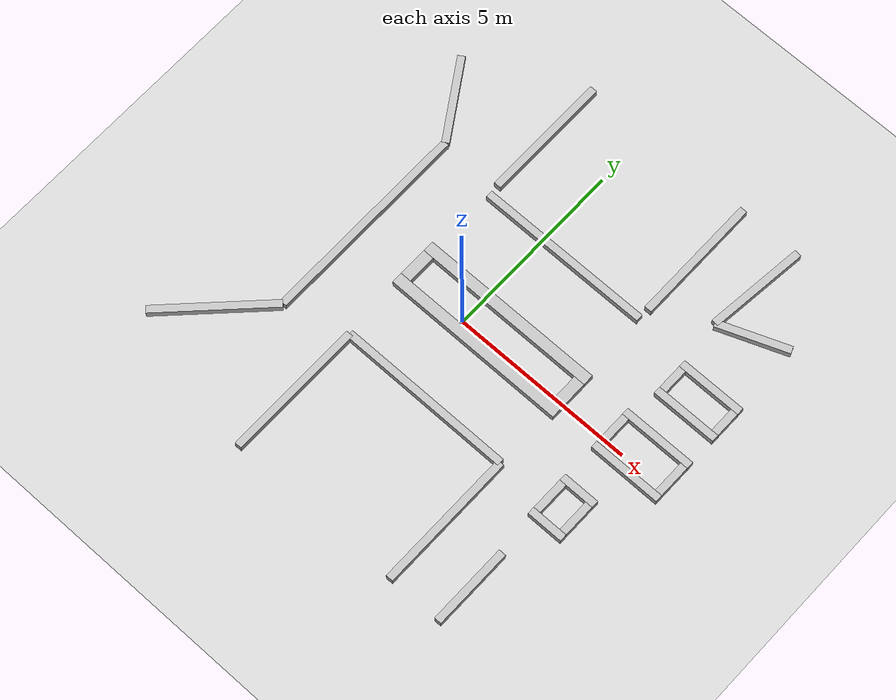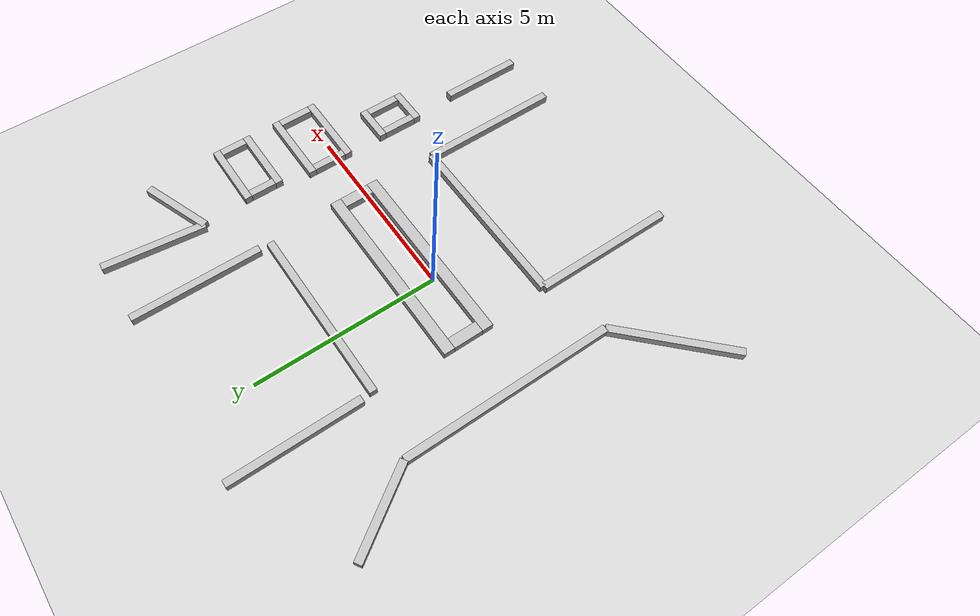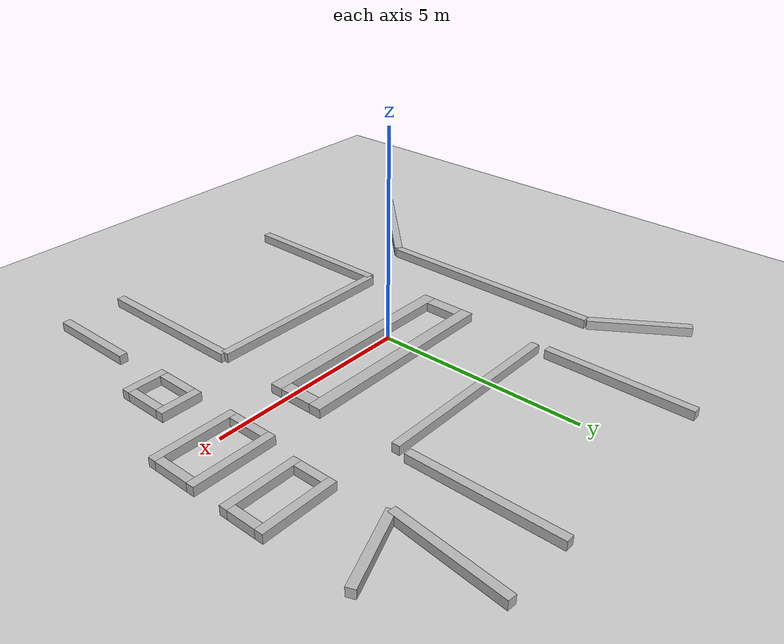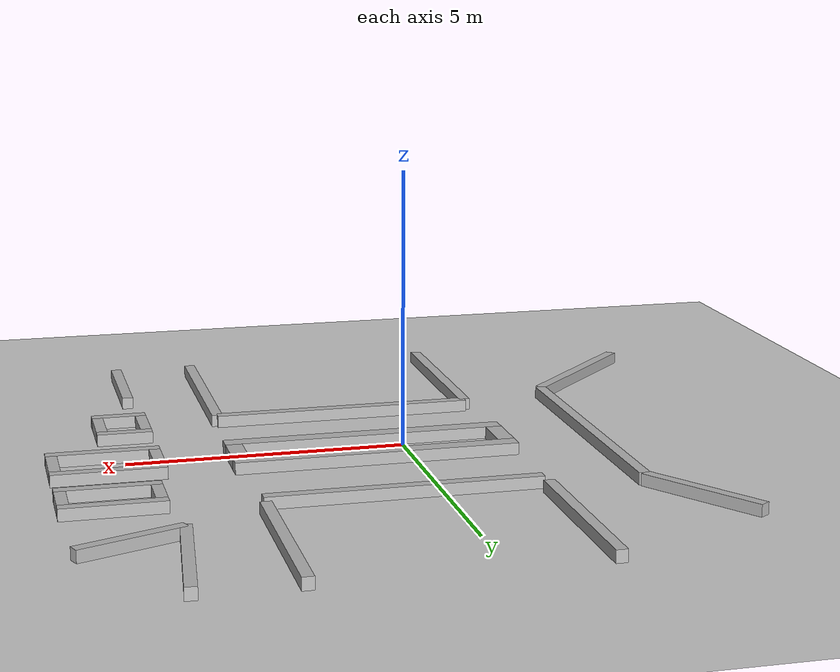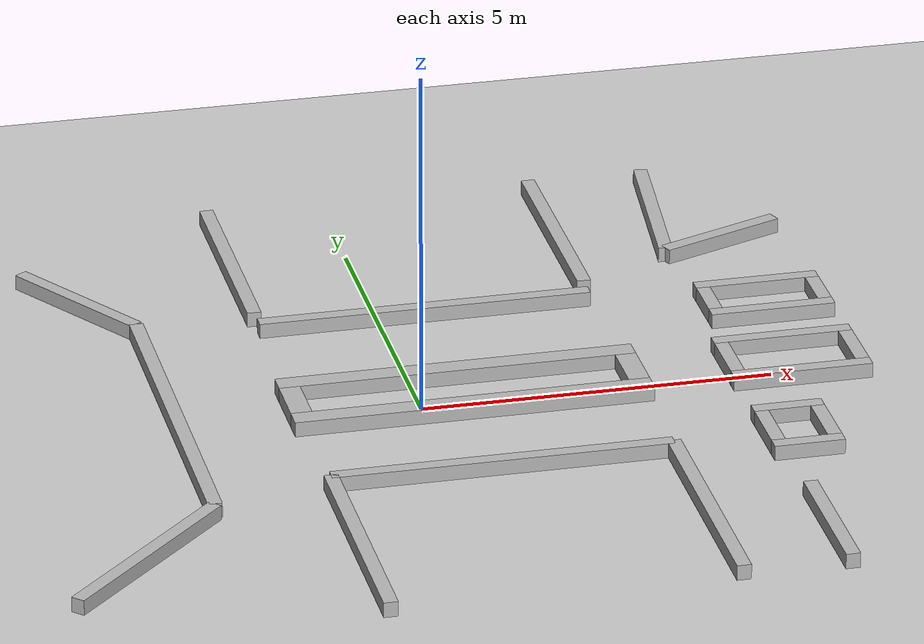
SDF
<?xml version="1.0" ?>
<sdf version="1.4">

	<world name="default">

		<scene>

			<ambient>0.4 0.4 0.4 1</ambient>

			<background>0.7 0.7 0.7 1</background>

			<shadows>true</shadows>

		</scene>

		<!-- A global light source -->

		<include>

			<uri>model://sun</uri>

		</include>

		<!-- A ground plane -->

		<include>

			<uri>model://ground_plane</uri>

		</include>

		<physics type="ode">

			<real_time_update_rate>1000.0</real_time_update_rate>

			<max_step_size>0.001</max_step_size>

			<real_time_factor>1</real_time_factor>

			<ode>

				<solver>

					<type>quick</type>

					<iters>150</iters>

					<precon_iters>0</precon_iters>

					<sor>1.400000</sor>

					<use_dynamic_moi_rescaling>1</use_dynamic_moi_rescaling>

				</solver>

				<constraints>

					<cfm>0.00001</cfm>

					<erp>0.2</erp>

					<contact_max_correcting_vel>2000.000000</contact_max_correcting_vel>

					<contact_surface_layer>0.01000</contact_surface_layer>

				</constraints>

			</ode>

		</physics>

		<model name="line-0">
			<pose>-3.425 0.27500000000000036 0.0 0.0 0.0 1.5707963267948966 </pose>
			<link name="link-line-0">
				<collision name="collision-line-0">
					<geometry>
						<box>
							<size>5.699999999999999 0.2 0.4 </size>
						</box>
					</geometry>
				</collision>
				<visual name="visual-line-0">
					<geometry>
						<box>
							<size>5.699999999999999 0.2 0.4 </size>
						</box>
					</geometry>
				</visual>
			</link>
		</model>
		<model name="line-1">
			<pose>0.6750000000000007 -2.0749999999999993 0.0 0.0 0.0 0.0 </pose>
			<link name="link-line-1">
				<collision name="collision-line-1">
					<geometry>
						<box>
							<size>4.800000000000001 0.2 0.4 </size>
						</box>
					</geometry>
				</collision>
				<visual name="visual-line-1">
					<geometry>
						<box>
							<size>4.800000000000001 0.2 0.4 </size>
						</box>
					</geometry>
				</visual>
			</link>
		</model>
		<model name="line-2">
			<pose>0.6750000000000007 2.8249999999999993 0.0 0.0 0.0 0.0 </pose>
			<link name="link-line-2">
				<collision name="collision-line-2">
					<geometry>
						<box>
							<size>4.800000000000001 0.2 0.4 </size>
						</box>
					</geometry>
				</collision>
				<visual name="visual-line-2">
					<geometry>
						<box>
							<size>4.800000000000001 0.2 0.4 </size>
						</box>
					</geometry>
				</visual>
			</link>
		</model>
		<model name="line-3">
			<pose>-1.7249999999999996 4.875 0.0 0.0 0.0 1.5707963267948966 </pose>
			<link name="link-line-3">
				<collision name="collision-line-3">
					<geometry>
						<box>
							<size>3.5 0.2 0.4 </size>
						</box>
					</geometry>
				</collision>
				<visual name="visual-line-3">
					<geometry>
						<box>
							<size>3.5 0.2 0.4 </size>
						</box>
					</geometry>
				</visual>
			</link>
		</model>
		<model name="line-4">
			<pose>3.075000000000001 4.875 0.0 0.0 0.0 1.5707963267948966 </pose>
			<link name="link-line-4">
				<collision name="collision-line-4">
					<geometry>
						<box>
							<size>3.5 0.2 0.4 </size>
						</box>
					</geometry>
				</collision>
				<visual name="visual-line-4">
					<geometry>
						<box>
							<size>3.5 0.2 0.4 </size>
						</box>
					</geometry>
				</visual>
			</link>
		</model>
		<model name="line-5">
			<pose>-1.7249999999999996 -3.9749999999999996 0.0 0.0 0.0 1.5707963267948966 </pose>
			<link name="link-line-5">
				<collision name="collision-line-5">
					<geometry>
						<box>
							<size>3.8000000000000007 0.2 0.4 </size>
						</box>
					</geometry>
				</collision>
				<visual name="visual-line-5">
					<geometry>
						<box>
							<size>3.8000000000000007 0.2 0.4 </size>
						</box>
					</geometry>
				</visual>
			</link>
		</model>
		<model name="line-6">
			<pose>3.075000000000001 -3.9749999999999996 0.0 0.0 0.0 1.5707963267948966 </pose>
			<link name="link-line-6">
				<collision name="collision-line-6">
					<geometry>
						<box>
							<size>3.8000000000000007 0.2 0.4 </size>
						</box>
					</geometry>
				</collision>
				<visual name="visual-line-6">
					<geometry>
						<box>
							<size>3.8000000000000007 0.2 0.4 </size>
						</box>
					</geometry>
				</visual>
			</link>
		</model>
		<model name="line-7">
			<pose>4.575000000000001 -4.775 0.0 0.0 0.0 1.5707963267948966 </pose>
			<link name="link-line-7">
				<collision name="collision-line-7">
					<geometry>
						<box>
							<size>2.1999999999999993 0.2 0.4 </size>
						</box>
					</geometry>
				</collision>
				<visual name="visual-line-7">
					<geometry>
						<box>
							<size>2.1999999999999993 0.2 0.4 </size>
						</box>
					</geometry>
				</visual>
			</link>
		</model>
		<model name="line-8">
			<pose>-4.074999999999999 4.125 0.0 0.0 0.0 2.14717154738608 </pose>
			<link name="link-line-8">
				<collision name="collision-line-8">
					<geometry>
						<box>
							<size>2.3853720883753127 0.2 0.4 </size>
						</box>
					</geometry>
				</collision>
				<visual name="visual-line-8">
					<geometry>
						<box>
							<size>2.3853720883753127 0.2 0.4 </size>
						</box>
					</geometry>
				</visual>
			</link>
		</model>
		<model name="line-9">
			<pose>-4.574999999999999 -3.7249999999999996 0.0 0.0 0.0 0.7853981633974484 </pose>
			<link name="link-line-9">
				<collision name="collision-line-9">
					<geometry>
						<box>
							<size>3.252691193458119 0.2 0.4 </size>
						</box>
					</geometry>
				</collision>
				<visual name="visual-line-9">
					<geometry>
						<box>
							<size>3.252691193458119 0.2 0.4 </size>
						</box>
					</geometry>
				</visual>
			</link>
		</model>
		<model name="line-10">
			<pose>4.625 5.275 0.0 0.0 0.0 1.4601391056210007 </pose>
			<link name="link-line-10">
				<collision name="collision-line-10">
					<geometry>
						<box>
							<size>2.7166155414412243 0.2 0.4 </size>
						</box>
					</geometry>
				</collision>
				<visual name="visual-line-10">
					<geometry>
						<box>
							<size>2.7166155414412243 0.2 0.4 </size>
						</box>
					</geometry>
				</visual>
			</link>
		</model>
		<model name="line-11">
			<pose>5.375 4.275 0.0 0.0 0.0 0.37089128881266203 </pose>
			<link name="link-line-11">
				<collision name="collision-line-11">
					<geometry>
						<box>
							<size>1.931320791582797 0.2 0.4 </size>
						</box>
					</geometry>
				</collision>
				<visual name="visual-line-11">
					<geometry>
						<box>
							<size>1.931320791582797 0.2 0.4 </size>
						</box>
					</geometry>
				</visual>
			</link>
		</model>
		<model name="rect-0-back">
			<pose>0.6750000000000007 0.8249999999999993 0.0 0.0 0.0 0.0 </pose>
			<link name="link-rect-0-back">
				<collision name="collision-rect-0-back">
					<geometry>
						<box>
							<size>5.100000000000001 0.3 0.4 </size>
						</box>
					</geometry>
				</collision>
				<visual name="visual-rect-0-back">
					<geometry>
						<box>
							<size>5.100000000000001 0.3 0.4 </size>
						</box>
					</geometry>
				</visual>
			</link>
		</model>
		<model name="rect-0-front">
			<pose>0.6750000000000007 -0.27500000000000036 0.0 0.0 0.0 0.0 </pose>
			<link name="link-rect-0-front">
				<collision name="collision-rect-0-front">
					<geometry>
						<box>
							<size>5.100000000000001 0.3 0.4 </size>
						</box>
					</geometry>
				</collision>
				<visual name="visual-rect-0-front">
					<geometry>
						<box>
							<size>5.100000000000001 0.3 0.4 </size>
						</box>
					</geometry>
				</visual>
			</link>
		</model>
		<model name="rect-0-left">
			<pose>-1.7249999999999996 0.2749999999999986 0.0 0.0 0.0 1.5707963267948966 </pose>
			<link name="link-rect-0-left">
				<collision name="collision-rect-0-left">
					<geometry>
						<box>
							<size>0.7999999999999989 0.3 0.4 </size>
						</box>
					</geometry>
				</collision>
				<visual name="visual-rect-0-left">
					<geometry>
						<box>
							<size>0.7999999999999989 0.3 0.4 </size>
						</box>
					</geometry>
				</visual>
			</link>
		</model>
		<model name="rect-0-right">
			<pose>3.075000000000001 0.2749999999999986 0.0 0.0 0.0 1.5707963267948966 </pose>
			<link name="link-rect-0-right">
				<collision name="collision-rect-0-right">
					<geometry>
						<box>
							<size>0.7999999999999989 0.3 0.4 </size>
						</box>
					</geometry>
				</collision>
				<visual name="visual-rect-0-right">
					<geometry>
						<box>
							<size>0.7999999999999989 0.3 0.4 </size>
						</box>
					</geometry>
				</visual>
			</link>
		</model>
		<model name="rect-1-back">
			<pose>4.875 -1.375 0.0 0.0 0.0 0.0 </pose>
			<link name="link-rect-1-back">
				<collision name="collision-rect-1-back">
					<geometry>
						<box>
							<size>1.0 0.2 0.4 </size>
						</box>
					</geometry>
				</collision>
				<visual name="visual-rect-1-back">
					<geometry>
						<box>
							<size>1.0 0.2 0.4 </size>
						</box>
					</geometry>
				</visual>
			</link>
		</model>
		<model name="rect-1-front">
			<pose>4.875 -2.4749999999999996 0.0 0.0 0.0 0.0 </pose>
			<link name="link-rect-1-front">
				<collision name="collision-rect-1-front">
					<geometry>
						<box>
							<size>1.0 0.2 0.4 </size>
						</box>
					</geometry>
				</collision>
				<visual name="visual-rect-1-front">
					<geometry>
						<box>
							<size>1.0 0.2 0.4 </size>
						</box>
					</geometry>
				</visual>
			</link>
		</model>
		<model name="rect-1-left">
			<pose>4.475 -1.9249999999999998 0.0 0.0 0.0 1.5707963267948966 </pose>
			<link name="link-rect-1-left">
				<collision name="collision-rect-1-left">
					<geometry>
						<box>
							<size>0.9000000000000004 0.2 0.4 </size>
						</box>
					</geometry>
				</collision>
				<visual name="visual-rect-1-left">
					<geometry>
						<box>
							<size>0.9000000000000004 0.2 0.4 </size>
						</box>
					</geometry>
				</visual>
			</link>
		</model>
		<model name="rect-1-right">
			<pose>5.275 -1.9249999999999998 0.0 0.0 0.0 1.5707963267948966 </pose>
			<link name="link-rect-1-right">
				<collision name="collision-rect-1-right">
					<geometry>
						<box>
							<size>0.9000000000000004 0.2 0.4 </size>
						</box>
					</geometry>
				</collision>
				<visual name="visual-rect-1-right">
					<geometry>
						<box>
							<size>0.9000000000000004 0.2 0.4 </size>
						</box>
					</geometry>
				</visual>
			</link>
		</model>
		<model name="rect-2-back">
			<pose>5.375 0.8249999999999993 0.0 0.0 0.0 0.0 </pose>
			<link name="link-rect-2-back">
				<collision name="collision-rect-2-back">
					<geometry>
						<box>
							<size>2.0 0.2 0.4 </size>
						</box>
					</geometry>
				</collision>
				<visual name="visual-rect-2-back">
					<geometry>
						<box>
							<size>2.0 0.2 0.4 </size>
						</box>
					</geometry>
				</visual>
			</link>
		</model>
		<model name="rect-2-front">
			<pose>5.375 -0.27500000000000036 0.0 0.0 0.0 0.0 </pose>
			<link name="link-rect-2-front">
				<collision name="collision-rect-2-front">
					<geometry>
						<box>
							<size>2.0 0.2 0.4 </size>
						</box>
					</geometry>
				</collision>
				<visual name="visual-rect-2-front">
					<geometry>
						<box>
							<size>2.0 0.2 0.4 </size>
						</box>
					</geometry>
				</visual>
			</link>
		</model>
		<model name="rect-2-left">
			<pose>4.475 0.2749999999999986 0.0 0.0 0.0 1.5707963267948966 </pose>
			<link name="link-rect-2-left">
				<collision name="collision-rect-2-left">
					<geometry>
						<box>
							<size>0.9000000000000004 0.2 0.4 </size>
						</box>
					</geometry>
				</collision>
				<visual name="visual-rect-2-left">
					<geometry>
						<box>
							<size>0.9000000000000004 0.2 0.4 </size>
						</box>
					</geometry>
				</visual>
			</link>
		</model>
		<model name="rect-2-right">
			<pose>6.275 0.2749999999999986 0.0 0.0 0.0 1.5707963267948966 </pose>
			<link name="link-rect-2-right">
				<collision name="collision-rect-2-right">
					<geometry>
						<box>
							<size>0.9000000000000004 0.2 0.4 </size>
						</box>
					</geometry>
				</collision>
				<visual name="visual-rect-2-right">
					<geometry>
						<box>
							<size>0.9000000000000004 0.2 0.4 </size>
						</box>
					</geometry>
				</visual>
			</link>
		</model>
		<model name="rect-3-back">
			<pose>5.475 2.625 0.0 0.0 0.0 0.0 </pose>
			<link name="link-rect-3-back">
				<collision name="collision-rect-3-back">
					<geometry>
						<box>
							<size>1.799999999999999 0.2 0.4 </size>
						</box>
					</geometry>
				</collision>
				<visual name="visual-rect-3-back">
					<geometry>
						<box>
							<size>1.799999999999999 0.2 0.4 </size>
						</box>
					</geometry>
				</visual>
			</link>
		</model>
		<model name="rect-3-front">
			<pose>5.475 1.7249999999999996 0.0 0.0 0.0 0.0 </pose>
			<link name="link-rect-3-front">
				<collision name="collision-rect-3-front">
					<geometry>
						<box>
							<size>1.799999999999999 0.2 0.4 </size>
						</box>
					</geometry>
				</collision>
				<visual name="visual-rect-3-front">
					<geometry>
						<box>
							<size>1.799999999999999 0.2 0.4 </size>
						</box>
					</geometry>
				</visual>
			</link>
		</model>
		<model name="rect-3-left">
			<pose>4.675000000000001 2.1750000000000007 0.0 0.0 0.0 1.5707963267948966 </pose>
			<link name="link-rect-3-left">
				<collision name="collision-rect-3-left">
					<geometry>
						<box>
							<size>0.7000000000000011 0.2 0.4 </size>
						</box>
					</geometry>
				</collision>
				<visual name="visual-rect-3-left">
					<geometry>
						<box>
							<size>0.7000000000000011 0.2 0.4 </size>
						</box>
					</geometry>
				</visual>
			</link>
		</model>
		<model name="rect-3-right">
			<pose>6.275 2.1750000000000007 0.0 0.0 0.0 1.5707963267948966 </pose>
			<link name="link-rect-3-right">
				<collision name="collision-rect-3-right">
					<geometry>
						<box>
							<size>0.7000000000000011 0.2 0.4 </size>
						</box>
					</geometry>
				</collision>
				<visual name="visual-rect-3-right">
					<geometry>
						<box>
							<size>0.7000000000000011 0.2 0.4 </size>
						</box>
					</geometry>
				</visual>
			</link>
		</model>
	</world>

</sdf>
